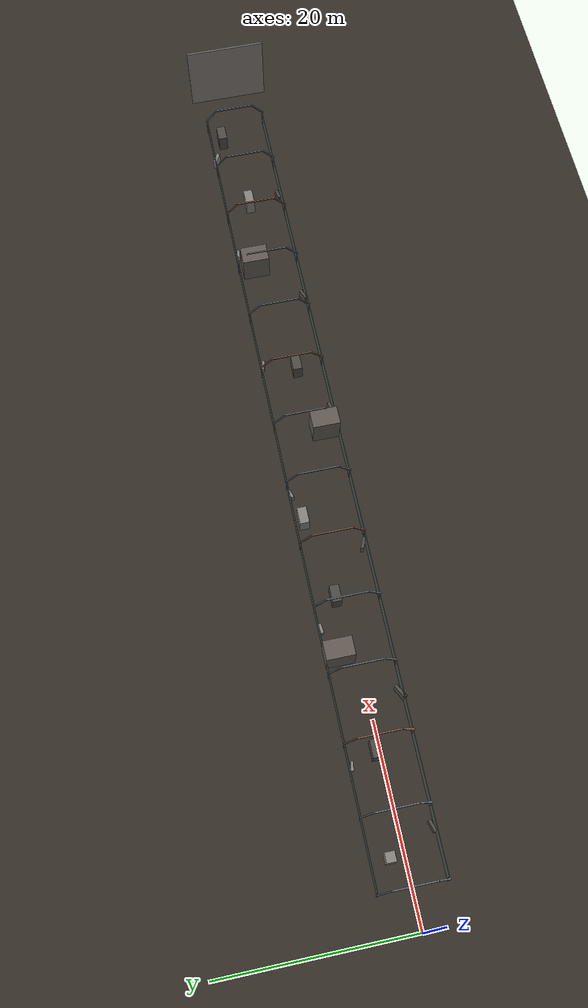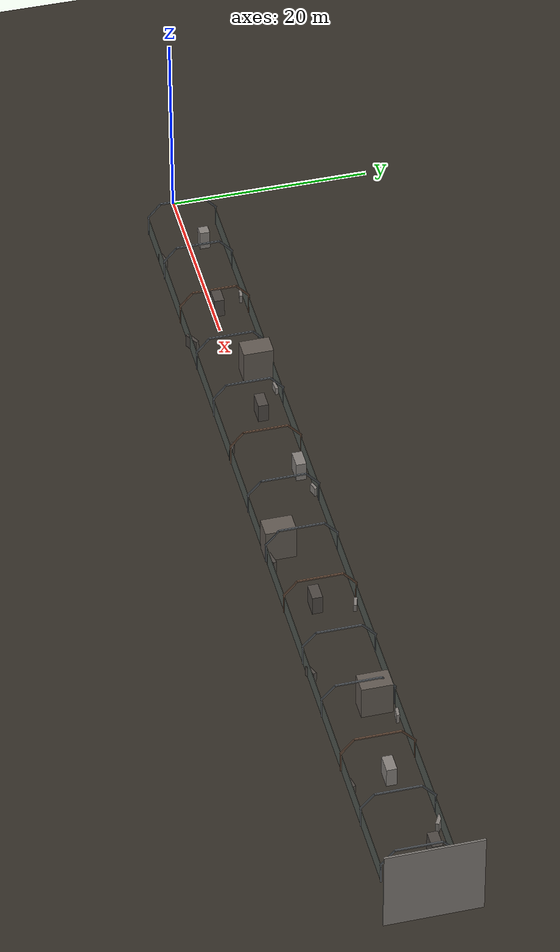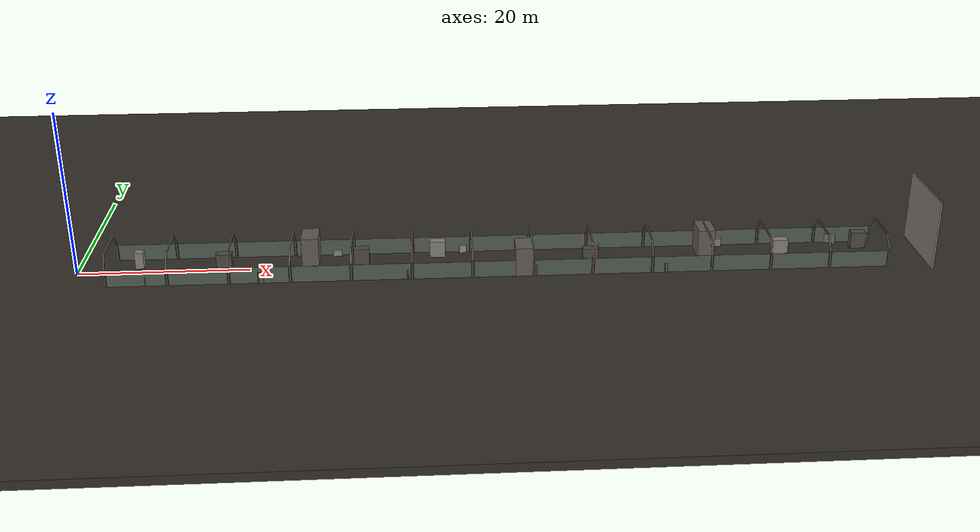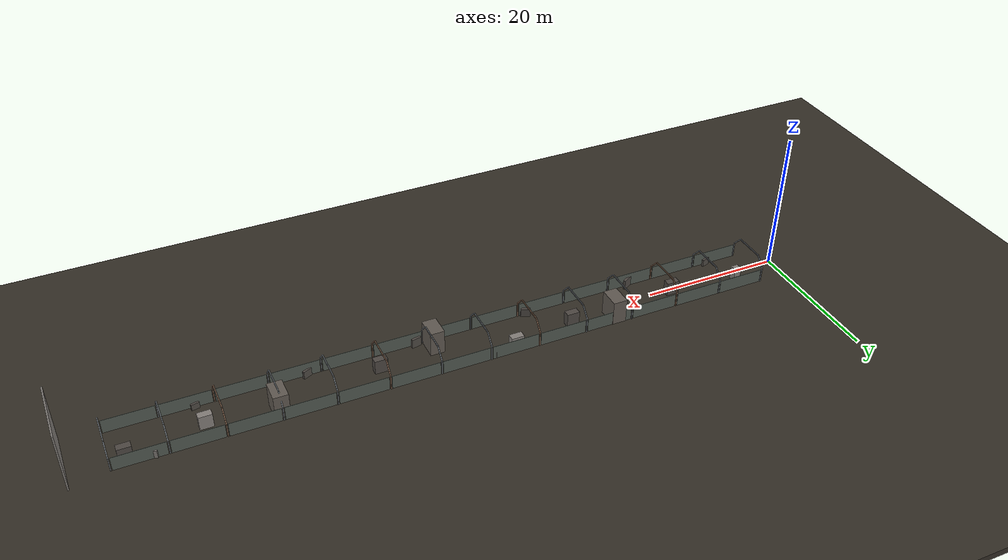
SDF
<sdf version="1.7">
 <world name="tunnel_100m_demonstration">
  <gravity>0 0 -9.8</gravity>
  <magnetic_field>6e-06 2.3e-05 -4.2e-05</magnetic_field>
  <atmosphere type="adiabatic"/>
  <physics type="ode">
   <max_step_size>0.001</max_step_size>
   <real_time_factor>1</real_time_factor>
   <real_time_update_rate>1000</real_time_update_rate>
  </physics>
  <scene>
   <ambient>0.17 0.15 0.13 1</ambient>
   <background>0.04 0.04 0.05 1</background>
   <shadows>1</shadows>
   <grid>false</grid>
   <origin_visual>false</origin_visual>
  </scene>
  <light name="dim_fill" type="directional">
   <cast_shadows>0</cast_shadows>
   <pose>50 0 8 0 -0 0</pose>
   <diffuse>0.22 0.20 0.18 1</diffuse>
   <specular>0.03 0.03 0.03 1</specular>
   <attenuation>
    <range>1000</range>
    <constant>0.9</constant>
    <linear>0.01</linear>
    <quadratic>0.001</quadratic>
   </attenuation>
   <direction>0.0 0.05 -1.0</direction>
  </light>
  <light name="light_00" type="point">
   <pose>7 0.0 5.5 0 0 0</pose>
   <diffuse>0.70 0.58 0.38 1</diffuse>
   <specular>0.12 0.10 0.06 1</specular>
   <attenuation>
    <range>20</range>
    <constant>0.35</constant>
    <linear>0.06</linear>
    <quadratic>0.015</quadratic>
   </attenuation>
  </light>
  <light name="light_01" type="point">
   <pose>21 0.0 5.5 0 0 0</pose>
   <diffuse>0.70 0.58 0.38 1</diffuse>
   <specular>0.12 0.10 0.06 1</specular>
   <attenuation>
    <range>20</range>
    <constant>0.35</constant>
    <linear>0.06</linear>
    <quadratic>0.015</quadratic>
   </attenuation>
  </light>
  <light name="light_02" type="point">
   <pose>35 0.0 5.5 0 0 0</pose>
   <diffuse>0.70 0.58 0.38 1</diffuse>
   <specular>0.12 0.10 0.06 1</specular>
   <attenuation>
    <range>20</range>
    <constant>0.35</constant>
    <linear>0.06</linear>
    <quadratic>0.015</quadratic>
   </attenuation>
  </light>
  <light name="light_03" type="point">
   <pose>49 0.0 5.5 0 0 0</pose>
   <diffuse>0.70 0.58 0.38 1</diffuse>
   <specular>0.12 0.10 0.06 1</specular>
   <attenuation>
    <range>20</range>
    <constant>0.35</constant>
    <linear>0.06</linear>
    <quadratic>0.015</quadratic>
   </attenuation>
  </light>
  <light name="light_04" type="point">
   <pose>63 0.0 5.5 0 0 0</pose>
   <diffuse>0.70 0.58 0.38 1</diffuse>
   <specular>0.12 0.10 0.06 1</specular>
   <attenuation>
    <range>20</range>
    <constant>0.35</constant>
    <linear>0.06</linear>
    <quadratic>0.015</quadratic>
   </attenuation>
  </light>
  <light name="light_05" type="point">
   <pose>77 0.0 5.5 0 0 0</pose>
   <diffuse>0.70 0.58 0.38 1</diffuse>
   <specular>0.12 0.10 0.06 1</specular>
   <attenuation>
    <range>20</range>
    <constant>0.35</constant>
    <linear>0.06</linear>
    <quadratic>0.015</quadratic>
   </attenuation>
  </light>
  <light name="light_06" type="point">
   <pose>91 0.0 5.5 0 0 0</pose>
   <diffuse>0.70 0.58 0.38 1</diffuse>
   <specular>0.12 0.10 0.06 1</specular>
   <attenuation>
    <range>20</range>
    <constant>0.35</constant>
    <linear>0.06</linear>
    <quadratic>0.015</quadratic>
   </attenuation>
  </light>
  <model name="ground_plane">
   <static>1</static>
   <link name="ground_link">
    <collision name="ground_collision">
     <pose>50 0 -0.5 0 0 0</pose>
     <geometry><box><size>400 400 1.0</size></box></geometry>
     <max_contacts>100</max_contacts>
     <surface>
      <contact><ode><soft_cfm>0</soft_cfm><soft_erp>0.8</soft_erp></ode></contact>
      <bounce><restitution_coefficient>0</restitution_coefficient></bounce>
      <friction><ode><mu>50</mu><mu2>50</mu2></ode></friction>
     </surface>
    </collision>
    <visual name="ground_visual">
     <pose>50 0 -0.5 0 0 0</pose>
     <geometry><box><size>400 400 1.0</size></box></geometry>
     <material>
      <ambient>0.18 0.16 0.14 1</ambient>
      <diffuse>0.20 0.18 0.15 1</diffuse>
      <specular>0.02 0.02 0.02 1</specular>
     </material>
    </visual>
   </link>
  </model>
  <model name="tunnel_end_wall">
   <pose>100 0 0 0 0 0</pose>
   <link name="Wall_0">
    <collision name="Wall_0_Collision">
     <geometry><box><size>9.15 0.20 8.5</size></box></geometry>
     <pose>0 0 4.25 0 0 0</pose>
     <max_contacts>50</max_contacts>
     <surface>
      <contact><ode><soft_cfm>0</soft_cfm><soft_erp>0.2</soft_erp></ode></contact>
      <bounce><restitution_coefficient>0</restitution_coefficient></bounce>
      <friction><ode><mu>5</mu><mu2>5</mu2></ode></friction>
     </surface>
    </collision>
    <visual name="Wall_0_Visual">
     <pose>0 0 4.25 0 0 0</pose>
     <geometry><box><size>9.15 0.20 8.5</size></box></geometry>
     <material>
      <ambient>0.52 0.50 0.48 1</ambient>
      <diffuse>0.50 0.48 0.46 1</diffuse>
      <specular>0.10 0.10 0.10 1</specular>
     </material>
    </visual>
    <pose>0 0 0 0 0 1.5708</pose>
   </link>
   <static>1</static>
  </model>
  <model name="arch_rib_00">
   <static>1</static>
   <pose>4 0 0 0 0 0</pose>
   <link name="link">
    <visual name="ll_v">
     <pose>0 -3.44 1.00 0 0 0</pose>
     <geometry><box><size>0.14 0.14 2.00</size></box></geometry>
     <material>
      <ambient>0.40 0.42 0.44 1</ambient>
      <diffuse>0.40 0.42 0.44 1</diffuse>
      <specular>0.6 0.6 0.65 1</specular>
     </material>
    </visual>
    <visual name="rl_v">
     <pose>0  3.44 1.00 0 0 0</pose>
     <geometry><box><size>0.14 0.14 2.00</size></box></geometry>
     <material>
      <ambient>0.40 0.42 0.44 1</ambient>
      <diffuse>0.40 0.42 0.44 1</diffuse>
      <specular>0.6 0.6 0.65 1</specular>
     </material>
    </visual>
    <visual name="ls_v">
     <pose>0 -2.86 2.86 -0.714 0 0</pose>
     <geometry><box><size>0.14 0.14 1.985</size></box></geometry>
     <material>
      <ambient>0.40 0.42 0.44 1</ambient>
      <diffuse>0.40 0.42 0.44 1</diffuse>
      <specular>0.6 0.6 0.65 1</specular>
     </material>
    </visual>
    <visual name="rs_v">
     <pose>0  2.86 2.86  0.714 0 0</pose>
     <geometry><box><size>0.14 0.14 1.985</size></box></geometry>
     <material>
      <ambient>0.40 0.42 0.44 1</ambient>
      <diffuse>0.40 0.42 0.44 1</diffuse>
      <specular>0.6 0.6 0.65 1</specular>
     </material>
    </visual>
    <visual name="cr_v">
     <pose>0  0.00 3.65 0 0 0</pose>
     <geometry><box><size>0.14 4.40 0.14</size></box></geometry>
     <material>
      <ambient>0.40 0.42 0.44 1</ambient>
      <diffuse>0.40 0.42 0.44 1</diffuse>
      <specular>0.6 0.6 0.65 1</specular>
     </material>
    </visual>
   </link>
  </model>
  <model name="arch_rib_01">
   <static>1</static>
   <pose>11 0 0 0 0 0</pose>
   <link name="link">
    <visual name="ll_v">
     <pose>0 -3.44 1.00 0 0 0</pose>
     <geometry><box><size>0.14 0.14 2.00</size></box></geometry>
     <material>
      <ambient>0.40 0.42 0.44 1</ambient>
      <diffuse>0.40 0.42 0.44 1</diffuse>
      <specular>0.6 0.6 0.65 1</specular>
     </material>
    </visual>
    <visual name="rl_v">
     <pose>0  3.44 1.00 0 0 0</pose>
     <geometry><box><size>0.14 0.14 2.00</size></box></geometry>
     <material>
      <ambient>0.40 0.42 0.44 1</ambient>
      <diffuse>0.40 0.42 0.44 1</diffuse>
      <specular>0.6 0.6 0.65 1</specular>
     </material>
    </visual>
    <visual name="ls_v">
     <pose>0 -2.86 2.86 -0.714 0 0</pose>
     <geometry><box><size>0.14 0.14 1.985</size></box></geometry>
     <material>
      <ambient>0.40 0.42 0.44 1</ambient>
      <diffuse>0.40 0.42 0.44 1</diffuse>
      <specular>0.6 0.6 0.65 1</specular>
     </material>
    </visual>
    <visual name="rs_v">
     <pose>0  2.86 2.86  0.714 0 0</pose>
     <geometry><box><size>0.14 0.14 1.985</size></box></geometry>
     <material>
      <ambient>0.40 0.42 0.44 1</ambient>
      <diffuse>0.40 0.42 0.44 1</diffuse>
      <specular>0.6 0.6 0.65 1</specular>
     </material>
    </visual>
    <visual name="cr_v">
     <pose>0  0.00 3.65 0 0 0</pose>
     <geometry><box><size>0.14 4.40 0.14</size></box></geometry>
     <material>
      <ambient>0.40 0.42 0.44 1</ambient>
      <diffuse>0.40 0.42 0.44 1</diffuse>
      <specular>0.6 0.6 0.65 1</specular>
     </material>
    </visual>
   </link>
  </model>
  <model name="arch_rib_02">
   <static>1</static>
   <pose>18 0 0 0 0 0</pose>
   <link name="link">
    <visual name="ll_v">
     <pose>0 -3.44 1.00 0 0 0</pose>
     <geometry><box><size>0.14 0.14 2.00</size></box></geometry>
     <material>
      <ambient>0.48 0.36 0.28 1</ambient>
      <diffuse>0.48 0.36 0.28 1</diffuse>
      <specular>0.6 0.6 0.65 1</specular>
     </material>
    </visual>
    <visual name="rl_v">
     <pose>0  3.44 1.00 0 0 0</pose>
     <geometry><box><size>0.14 0.14 2.00</size></box></geometry>
     <material>
      <ambient>0.48 0.36 0.28 1</ambient>
      <diffuse>0.48 0.36 0.28 1</diffuse>
      <specular>0.6 0.6 0.65 1</specular>
     </material>
    </visual>
    <visual name="ls_v">
     <pose>0 -2.86 2.86 -0.714 0 0</pose>
     <geometry><box><size>0.14 0.14 1.985</size></box></geometry>
     <material>
      <ambient>0.48 0.36 0.28 1</ambient>
      <diffuse>0.48 0.36 0.28 1</diffuse>
      <specular>0.6 0.6 0.65 1</specular>
     </material>
    </visual>
    <visual name="rs_v">
     <pose>0  2.86 2.86  0.714 0 0</pose>
     <geometry><box><size>0.14 0.14 1.985</size></box></geometry>
     <material>
      <ambient>0.48 0.36 0.28 1</ambient>
      <diffuse>0.48 0.36 0.28 1</diffuse>
      <specular>0.6 0.6 0.65 1</specular>
     </material>
    </visual>
    <visual name="cr_v">
     <pose>0  0.00 3.65 0 0 0</pose>
     <geometry><box><size>0.14 4.40 0.14</size></box></geometry>
     <material>
      <ambient>0.48 0.36 0.28 1</ambient>
      <diffuse>0.48 0.36 0.28 1</diffuse>
      <specular>0.6 0.6 0.65 1</specular>
     </material>
    </visual>
   </link>
  </model>
  <model name="arch_rib_03">
   <static>1</static>
   <pose>25 0 0 0 0 0</pose>
   <link name="link">
    <visual name="ll_v">
     <pose>0 -3.44 1.00 0 0 0</pose>
     <geometry><box><size>0.14 0.14 2.00</size></box></geometry>
     <material>
      <ambient>0.40 0.42 0.44 1</ambient>
      <diffuse>0.40 0.42 0.44 1</diffuse>
      <specular>0.6 0.6 0.65 1</specular>
     </material>
    </visual>
    <visual name="rl_v">
     <pose>0  3.44 1.00 0 0 0</pose>
     <geometry><box><size>0.14 0.14 2.00</size></box></geometry>
     <material>
      <ambient>0.40 0.42 0.44 1</ambient>
      <diffuse>0.40 0.42 0.44 1</diffuse>
      <specular>0.6 0.6 0.65 1</specular>
     </material>
    </visual>
    <visual name="ls_v">
     <pose>0 -2.86 2.86 -0.714 0 0</pose>
     <geometry><box><size>0.14 0.14 1.985</size></box></geometry>
     <material>
      <ambient>0.40 0.42 0.44 1</ambient>
      <diffuse>0.40 0.42 0.44 1</diffuse>
      <specular>0.6 0.6 0.65 1</specular>
     </material>
    </visual>
    <visual name="rs_v">
     <pose>0  2.86 2.86  0.714 0 0</pose>
     <geometry><box><size>0.14 0.14 1.985</size></box></geometry>
     <material>
      <ambient>0.40 0.42 0.44 1</ambient>
      <diffuse>0.40 0.42 0.44 1</diffuse>
      <specular>0.6 0.6 0.65 1</specular>
     </material>
    </visual>
    <visual name="cr_v">
     <pose>0  0.00 3.65 0 0 0</pose>
     <geometry><box><size>0.14 4.40 0.14</size></box></geometry>
     <material>
      <ambient>0.40 0.42 0.44 1</ambient>
      <diffuse>0.40 0.42 0.44 1</diffuse>
      <specular>0.6 0.6 0.65 1</specular>
     </material>
    </visual>
   </link>
  </model>
  <model name="arch_rib_04">
   <static>1</static>
   <pose>32 0 0 0 0 0</pose>
   <link name="link">
    <visual name="ll_v">
     <pose>0 -3.44 1.00 0 0 0</pose>
     <geometry><box><size>0.14 0.14 2.00</size></box></geometry>
     <material>
      <ambient>0.40 0.42 0.44 1</ambient>
      <diffuse>0.40 0.42 0.44 1</diffuse>
      <specular>0.6 0.6 0.65 1</specular>
     </material>
    </visual>
    <visual name="rl_v">
     <pose>0  3.44 1.00 0 0 0</pose>
     <geometry><box><size>0.14 0.14 2.00</size></box></geometry>
     <material>
      <ambient>0.40 0.42 0.44 1</ambient>
      <diffuse>0.40 0.42 0.44 1</diffuse>
      <specular>0.6 0.6 0.65 1</specular>
     </material>
    </visual>
    <visual name="ls_v">
     <pose>0 -2.86 2.86 -0.714 0 0</pose>
     <geometry><box><size>0.14 0.14 1.985</size></box></geometry>
     <material>
      <ambient>0.40 0.42 0.44 1</ambient>
      <diffuse>0.40 0.42 0.44 1</diffuse>
      <specular>0.6 0.6 0.65 1</specular>
     </material>
    </visual>
    <visual name="rs_v">
     <pose>0  2.86 2.86  0.714 0 0</pose>
     <geometry><box><size>0.14 0.14 1.985</size></box></geometry>
     <material>
      <ambient>0.40 0.42 0.44 1</ambient>
      <diffuse>0.40 0.42 0.44 1</diffuse>
      <specular>0.6 0.6 0.65 1</specular>
     </material>
    </visual>
    <visual name="cr_v">
     <pose>0  0.00 3.65 0 0 0</pose>
     <geometry><box><size>0.14 4.40 0.14</size></box></geometry>
     <material>
      <ambient>0.40 0.42 0.44 1</ambient>
      <diffuse>0.40 0.42 0.44 1</diffuse>
      <specular>0.6 0.6 0.65 1</specular>
     </material>
    </visual>
   </link>
  </model>
  <model name="arch_rib_05">
   <static>1</static>
   <pose>39 0 0 0 0 0</pose>
   <link name="link">
    <visual name="ll_v">
     <pose>0 -3.44 1.00 0 0 0</pose>
     <geometry><box><size>0.14 0.14 2.00</size></box></geometry>
     <material>
      <ambient>0.48 0.36 0.28 1</ambient>
      <diffuse>0.48 0.36 0.28 1</diffuse>
      <specular>0.6 0.6 0.65 1</specular>
     </material>
    </visual>
    <visual name="rl_v">
     <pose>0  3.44 1.00 0 0 0</pose>
     <geometry><box><size>0.14 0.14 2.00</size></box></geometry>
     <material>
      <ambient>0.48 0.36 0.28 1</ambient>
      <diffuse>0.48 0.36 0.28 1</diffuse>
      <specular>0.6 0.6 0.65 1</specular>
     </material>
    </visual>
    <visual name="ls_v">
     <pose>0 -2.86 2.86 -0.714 0 0</pose>
     <geometry><box><size>0.14 0.14 1.985</size></box></geometry>
     <material>
      <ambient>0.48 0.36 0.28 1</ambient>
      <diffuse>0.48 0.36 0.28 1</diffuse>
      <specular>0.6 0.6 0.65 1</specular>
     </material>
    </visual>
    <visual name="rs_v">
     <pose>0  2.86 2.86  0.714 0 0</pose>
     <geometry><box><size>0.14 0.14 1.985</size></box></geometry>
     <material>
      <ambient>0.48 0.36 0.28 1</ambient>
      <diffuse>0.48 0.36 0.28 1</diffuse>
      <specular>0.6 0.6 0.65 1</specular>
     </material>
    </visual>
    <visual name="cr_v">
     <pose>0  0.00 3.65 0 0 0</pose>
     <geometry><box><size>0.14 4.40 0.14</size></box></geometry>
     <material>
      <ambient>0.48 0.36 0.28 1</ambient>
      <diffuse>0.48 0.36 0.28 1</diffuse>
      <specular>0.6 0.6 0.65 1</specular>
     </material>
    </visual>
   </link>
  </model>
  <model name="arch_rib_06">
   <static>1</static>
   <pose>46 0 0 0 0 0</pose>
   <link name="link">
    <visual name="ll_v">
     <pose>0 -3.44 1.00 0 0 0</pose>
     <geometry><box><size>0.14 0.14 2.00</size></box></geometry>
     <material>
      <ambient>0.40 0.42 0.44 1</ambient>
      <diffuse>0.40 0.42 0.44 1</diffuse>
      <specular>0.6 0.6 0.65 1</specular>
     </material>
    </visual>
    <visual name="rl_v">
     <pose>0  3.44 1.00 0 0 0</pose>
     <geometry><box><size>0.14 0.14 2.00</size></box></geometry>
     <material>
      <ambient>0.40 0.42 0.44 1</ambient>
      <diffuse>0.40 0.42 0.44 1</diffuse>
      <specular>0.6 0.6 0.65 1</specular>
     </material>
    </visual>
    <visual name="ls_v">
     <pose>0 -2.86 2.86 -0.714 0 0</pose>
     <geometry><box><size>0.14 0.14 1.985</size></box></geometry>
     <material>
      <ambient>0.40 0.42 0.44 1</ambient>
      <diffuse>0.40 0.42 0.44 1</diffuse>
      <specular>0.6 0.6 0.65 1</specular>
     </material>
    </visual>
    <visual name="rs_v">
     <pose>0  2.86 2.86  0.714 0 0</pose>
     <geometry><box><size>0.14 0.14 1.985</size></box></geometry>
     <material>
      <ambient>0.40 0.42 0.44 1</ambient>
      <diffuse>0.40 0.42 0.44 1</diffuse>
      <specular>0.6 0.6 0.65 1</specular>
     </material>
    </visual>
    <visual name="cr_v">
     <pose>0  0.00 3.65 0 0 0</pose>
     <geometry><box><size>0.14 4.40 0.14</size></box></geometry>
     <material>
      <ambient>0.40 0.42 0.44 1</ambient>
      <diffuse>0.40 0.42 0.44 1</diffuse>
      <specular>0.6 0.6 0.65 1</specular>
     </material>
    </visual>
   </link>
  </model>
  <model name="arch_rib_07">
   <static>1</static>
   <pose>53 0 0 0 0 0</pose>
   <link name="link">
    <visual name="ll_v">
     <pose>0 -3.44 1.00 0 0 0</pose>
     <geometry><box><size>0.14 0.14 2.00</size></box></geometry>
     <material>
      <ambient>0.40 0.42 0.44 1</ambient>
      <diffuse>0.40 0.42 0.44 1</diffuse>
      <specular>0.6 0.6 0.65 1</specular>
     </material>
    </visual>
    <visual name="rl_v">
     <pose>0  3.44 1.00 0 0 0</pose>
     <geometry><box><size>0.14 0.14 2.00</size></box></geometry>
     <material>
      <ambient>0.40 0.42 0.44 1</ambient>
      <diffuse>0.40 0.42 0.44 1</diffuse>
      <specular>0.6 0.6 0.65 1</specular>
     </material>
    </visual>
    <visual name="ls_v">
     <pose>0 -2.86 2.86 -0.714 0 0</pose>
     <geometry><box><size>0.14 0.14 1.985</size></box></geometry>
     <material>
      <ambient>0.40 0.42 0.44 1</ambient>
      <diffuse>0.40 0.42 0.44 1</diffuse>
      <specular>0.6 0.6 0.65 1</specular>
     </material>
    </visual>
    <visual name="rs_v">
     <pose>0  2.86 2.86  0.714 0 0</pose>
     <geometry><box><size>0.14 0.14 1.985</size></box></geometry>
     <material>
      <ambient>0.40 0.42 0.44 1</ambient>
      <diffuse>0.40 0.42 0.44 1</diffuse>
      <specular>0.6 0.6 0.65 1</specular>
     </material>
    </visual>
    <visual name="cr_v">
     <pose>0  0.00 3.65 0 0 0</pose>
     <geometry><box><size>0.14 4.40 0.14</size></box></geometry>
     <material>
      <ambient>0.40 0.42 0.44 1</ambient>
      <diffuse>0.40 0.42 0.44 1</diffuse>
      <specular>0.6 0.6 0.65 1</specular>
     </material>
    </visual>
   </link>
  </model>
  <model name="arch_rib_08">
   <static>1</static>
   <pose>60 0 0 0 0 0</pose>
   <link name="link">
    <visual name="ll_v">
     <pose>0 -3.44 1.00 0 0 0</pose>
     <geometry><box><size>0.14 0.14 2.00</size></box></geometry>
     <material>
      <ambient>0.48 0.36 0.28 1</ambient>
      <diffuse>0.48 0.36 0.28 1</diffuse>
      <specular>0.6 0.6 0.65 1</specular>
     </material>
    </visual>
    <visual name="rl_v">
     <pose>0  3.44 1.00 0 0 0</pose>
     <geometry><box><size>0.14 0.14 2.00</size></box></geometry>
     <material>
      <ambient>0.48 0.36 0.28 1</ambient>
      <diffuse>0.48 0.36 0.28 1</diffuse>
      <specular>0.6 0.6 0.65 1</specular>
     </material>
    </visual>
    <visual name="ls_v">
     <pose>0 -2.86 2.86 -0.714 0 0</pose>
     <geometry><box><size>0.14 0.14 1.985</size></box></geometry>
     <material>
      <ambient>0.48 0.36 0.28 1</ambient>
      <diffuse>0.48 0.36 0.28 1</diffuse>
      <specular>0.6 0.6 0.65 1</specular>
     </material>
    </visual>
    <visual name="rs_v">
     <pose>0  2.86 2.86  0.714 0 0</pose>
     <geometry><box><size>0.14 0.14 1.985</size></box></geometry>
     <material>
      <ambient>0.48 0.36 0.28 1</ambient>
      <diffuse>0.48 0.36 0.28 1</diffuse>
      <specular>0.6 0.6 0.65 1</specular>
     </material>
    </visual>
    <visual name="cr_v">
     <pose>0  0.00 3.65 0 0 0</pose>
     <geometry><box><size>0.14 4.40 0.14</size></box></geometry>
     <material>
      <ambient>0.48 0.36 0.28 1</ambient>
      <diffuse>0.48 0.36 0.28 1</diffuse>
      <specular>0.6 0.6 0.65 1</specular>
     </material>
    </visual>
   </link>
  </model>
  <model name="arch_rib_09">
   <static>1</static>
   <pose>67 0 0 0 0 0</pose>
   <link name="link">
    <visual name="ll_v">
     <pose>0 -3.44 1.00 0 0 0</pose>
     <geometry><box><size>0.14 0.14 2.00</size></box></geometry>
     <material>
      <ambient>0.40 0.42 0.44 1</ambient>
      <diffuse>0.40 0.42 0.44 1</diffuse>
      <specular>0.6 0.6 0.65 1</specular>
     </material>
    </visual>
    <visual name="rl_v">
     <pose>0  3.44 1.00 0 0 0</pose>
     <geometry><box><size>0.14 0.14 2.00</size></box></geometry>
     <material>
      <ambient>0.40 0.42 0.44 1</ambient>
      <diffuse>0.40 0.42 0.44 1</diffuse>
      <specular>0.6 0.6 0.65 1</specular>
     </material>
    </visual>
    <visual name="ls_v">
     <pose>0 -2.86 2.86 -0.714 0 0</pose>
     <geometry><box><size>0.14 0.14 1.985</size></box></geometry>
     <material>
      <ambient>0.40 0.42 0.44 1</ambient>
      <diffuse>0.40 0.42 0.44 1</diffuse>
      <specular>0.6 0.6 0.65 1</specular>
     </material>
    </visual>
    <visual name="rs_v">
     <pose>0  2.86 2.86  0.714 0 0</pose>
     <geometry><box><size>0.14 0.14 1.985</size></box></geometry>
     <material>
      <ambient>0.40 0.42 0.44 1</ambient>
      <diffuse>0.40 0.42 0.44 1</diffuse>
      <specular>0.6 0.6 0.65 1</specular>
     </material>
    </visual>
    <visual name="cr_v">
     <pose>0  0.00 3.65 0 0 0</pose>
     <geometry><box><size>0.14 4.40 0.14</size></box></geometry>
     <material>
      <ambient>0.40 0.42 0.44 1</ambient>
      <diffuse>0.40 0.42 0.44 1</diffuse>
      <specular>0.6 0.6 0.65 1</specular>
     </material>
    </visual>
   </link>
  </model>
  <model name="arch_rib_10">
   <static>1</static>
   <pose>74 0 0 0 0 0</pose>
   <link name="link">
    <visual name="ll_v">
     <pose>0 -3.44 1.00 0 0 0</pose>
     <geometry><box><size>0.14 0.14 2.00</size></box></geometry>
     <material>
      <ambient>0.40 0.42 0.44 1</ambient>
      <diffuse>0.40 0.42 0.44 1</diffuse>
      <specular>0.6 0.6 0.65 1</specular>
     </material>
    </visual>
    <visual name="rl_v">
     <pose>0  3.44 1.00 0 0 0</pose>
     <geometry><box><size>0.14 0.14 2.00</size></box></geometry>
     <material>
      <ambient>0.40 0.42 0.44 1</ambient>
      <diffuse>0.40 0.42 0.44 1</diffuse>
      <specular>0.6 0.6 0.65 1</specular>
     </material>
    </visual>
    <visual name="ls_v">
     <pose>0 -2.86 2.86 -0.714 0 0</pose>
     <geometry><box><size>0.14 0.14 1.985</size></box></geometry>
     <material>
      <ambient>0.40 0.42 0.44 1</ambient>
      <diffuse>0.40 0.42 0.44 1</diffuse>
      <specular>0.6 0.6 0.65 1</specular>
     </material>
    </visual>
    <visual name="rs_v">
     <pose>0  2.86 2.86  0.714 0 0</pose>
     <geometry><box><size>0.14 0.14 1.985</size></box></geometry>
     <material>
      <ambient>0.40 0.42 0.44 1</ambient>
      <diffuse>0.40 0.42 0.44 1</diffuse>
      <specular>0.6 0.6 0.65 1</specular>
     </material>
    </visual>
    <visual name="cr_v">
     <pose>0  0.00 3.65 0 0 0</pose>
     <geometry><box><size>0.14 4.40 0.14</size></box></geometry>
     <material>
      <ambient>0.40 0.42 0.44 1</ambient>
      <diffuse>0.40 0.42 0.44 1</diffuse>
      <specular>0.6 0.6 0.65 1</specular>
     </material>
    </visual>
   </link>
  </model>
  <model name="arch_rib_11">
   <static>1</static>
   <pose>81 0 0 0 0 0</pose>
   <link name="link">
    <visual name="ll_v">
     <pose>0 -3.44 1.00 0 0 0</pose>
     <geometry><box><size>0.14 0.14 2.00</size></box></geometry>
     <material>
      <ambient>0.48 0.36 0.28 1</ambient>
      <diffuse>0.48 0.36 0.28 1</diffuse>
      <specular>0.6 0.6 0.65 1</specular>
     </material>
    </visual>
    <visual name="rl_v">
     <pose>0  3.44 1.00 0 0 0</pose>
     <geometry><box><size>0.14 0.14 2.00</size></box></geometry>
     <material>
      <ambient>0.48 0.36 0.28 1</ambient>
      <diffuse>0.48 0.36 0.28 1</diffuse>
      <specular>0.6 0.6 0.65 1</specular>
     </material>
    </visual>
    <visual name="ls_v">
     <pose>0 -2.86 2.86 -0.714 0 0</pose>
     <geometry><box><size>0.14 0.14 1.985</size></box></geometry>
     <material>
      <ambient>0.48 0.36 0.28 1</ambient>
      <diffuse>0.48 0.36 0.28 1</diffuse>
      <specular>0.6 0.6 0.65 1</specular>
     </material>
    </visual>
    <visual name="rs_v">
     <pose>0  2.86 2.86  0.714 0 0</pose>
     <geometry><box><size>0.14 0.14 1.985</size></box></geometry>
     <material>
      <ambient>0.48 0.36 0.28 1</ambient>
      <diffuse>0.48 0.36 0.28 1</diffuse>
      <specular>0.6 0.6 0.65 1</specular>
     </material>
    </visual>
    <visual name="cr_v">
     <pose>0  0.00 3.65 0 0 0</pose>
     <geometry><box><size>0.14 4.40 0.14</size></box></geometry>
     <material>
      <ambient>0.48 0.36 0.28 1</ambient>
      <diffuse>0.48 0.36 0.28 1</diffuse>
      <specular>0.6 0.6 0.65 1</specular>
     </material>
    </visual>
   </link>
  </model>
  <model name="arch_rib_12">
   <static>1</static>
   <pose>88 0 0 0 0 0</pose>
   <link name="link">
    <visual name="ll_v">
     <pose>0 -3.44 1.00 0 0 0</pose>
     <geometry><box><size>0.14 0.14 2.00</size></box></geometry>
     <material>
      <ambient>0.40 0.42 0.44 1</ambient>
      <diffuse>0.40 0.42 0.44 1</diffuse>
      <specular>0.6 0.6 0.65 1</specular>
     </material>
    </visual>
    <visual name="rl_v">
     <pose>0  3.44 1.00 0 0 0</pose>
     <geometry><box><size>0.14 0.14 2.00</size></box></geometry>
     <material>
      <ambient>0.40 0.42 0.44 1</ambient>
      <diffuse>0.40 0.42 0.44 1</diffuse>
      <specular>0.6 0.6 0.65 1</specular>
     </material>
    </visual>
    <visual name="ls_v">
     <pose>0 -2.86 2.86 -0.714 0 0</pose>
     <geometry><box><size>0.14 0.14 1.985</size></box></geometry>
     <material>
      <ambient>0.40 0.42 0.44 1</ambient>
      <diffuse>0.40 0.42 0.44 1</diffuse>
      <specular>0.6 0.6 0.65 1</specular>
     </material>
    </visual>
    <visual name="rs_v">
     <pose>0  2.86 2.86  0.714 0 0</pose>
     <geometry><box><size>0.14 0.14 1.985</size></box></geometry>
     <material>
      <ambient>0.40 0.42 0.44 1</ambient>
      <diffuse>0.40 0.42 0.44 1</diffuse>
      <specular>0.6 0.6 0.65 1</specular>
     </material>
    </visual>
    <visual name="cr_v">
     <pose>0  0.00 3.65 0 0 0</pose>
     <geometry><box><size>0.14 4.40 0.14</size></box></geometry>
     <material>
      <ambient>0.40 0.42 0.44 1</ambient>
      <diffuse>0.40 0.42 0.44 1</diffuse>
      <specular>0.6 0.6 0.65 1</specular>
     </material>
    </visual>
   </link>
  </model>
  <model name="arch_rib_13">
   <static>1</static>
   <pose>95 0 0 0 0 0</pose>
   <link name="link">
    <visual name="ll_v">
     <pose>0 -3.44 1.00 0 0 0</pose>
     <geometry><box><size>0.14 0.14 2.00</size></box></geometry>
     <material>
      <ambient>0.40 0.42 0.44 1</ambient>
      <diffuse>0.40 0.42 0.44 1</diffuse>
      <specular>0.6 0.6 0.65 1</specular>
     </material>
    </visual>
    <visual name="rl_v">
     <pose>0  3.44 1.00 0 0 0</pose>
     <geometry><box><size>0.14 0.14 2.00</size></box></geometry>
     <material>
      <ambient>0.40 0.42 0.44 1</ambient>
      <diffuse>0.40 0.42 0.44 1</diffuse>
      <specular>0.6 0.6 0.65 1</specular>
     </material>
    </visual>
    <visual name="ls_v">
     <pose>0 -2.86 2.86 -0.714 0 0</pose>
     <geometry><box><size>0.14 0.14 1.985</size></box></geometry>
     <material>
      <ambient>0.40 0.42 0.44 1</ambient>
      <diffuse>0.40 0.42 0.44 1</diffuse>
      <specular>0.6 0.6 0.65 1</specular>
     </material>
    </visual>
    <visual name="rs_v">
     <pose>0  2.86 2.86  0.714 0 0</pose>
     <geometry><box><size>0.14 0.14 1.985</size></box></geometry>
     <material>
      <ambient>0.40 0.42 0.44 1</ambient>
      <diffuse>0.40 0.42 0.44 1</diffuse>
      <specular>0.6 0.6 0.65 1</specular>
     </material>
    </visual>
    <visual name="cr_v">
     <pose>0  0.00 3.65 0 0 0</pose>
     <geometry><box><size>0.14 4.40 0.14</size></box></geometry>
     <material>
      <ambient>0.40 0.42 0.44 1</ambient>
      <diffuse>0.40 0.42 0.44 1</diffuse>
      <specular>0.6 0.6 0.65 1</specular>
     </material>
    </visual>
   </link>
  </model>
  <model name="panel_L_00">
   <static>1</static>
   <pose>7.5 -3.42 0 0 0 0</pose>
   <link name="link">
    <visual name="v">
     <pose>0 0 1.0 0 0 0</pose>
     <geometry><box><size>6.65 0.04 2.00</size></box></geometry>
     <material>
      <ambient>0.32 0.35 0.32 1</ambient>
      <diffuse>0.32 0.35 0.32 1</diffuse>
      <specular>0.2 0.2 0.2 1</specular>
     </material>
    </visual>
   </link>
  </model>
  <model name="panel_R_00">
   <static>1</static>
   <pose>7.5 3.42 0 0 0 0</pose>
   <link name="link">
    <visual name="v">
     <pose>0 0 1.0 0 0 0</pose>
     <geometry><box><size>6.65 0.04 2.00</size></box></geometry>
     <material>
      <ambient>0.32 0.35 0.32 1</ambient>
      <diffuse>0.32 0.35 0.32 1</diffuse>
      <specular>0.2 0.2 0.2 1</specular>
     </material>
    </visual>
   </link>
  </model>
  <model name="panel_L_01">
   <static>1</static>
   <pose>14.5 -3.42 0 0 0 0</pose>
   <link name="link">
    <visual name="v">
     <pose>0 0 1.0 0 0 0</pose>
     <geometry><box><size>6.65 0.04 2.00</size></box></geometry>
     <material>
      <ambient>0.32 0.35 0.32 1</ambient>
      <diffuse>0.32 0.35 0.32 1</diffuse>
      <specular>0.2 0.2 0.2 1</specular>
     </material>
    </visual>
   </link>
  </model>
  <model name="panel_R_01">
   <static>1</static>
   <pose>14.5 3.42 0 0 0 0</pose>
   <link name="link">
    <visual name="v">
     <pose>0 0 1.0 0 0 0</pose>
     <geometry><box><size>6.65 0.04 2.00</size></box></geometry>
     <material>
      <ambient>0.32 0.35 0.32 1</ambient>
      <diffuse>0.32 0.35 0.32 1</diffuse>
      <specular>0.2 0.2 0.2 1</specular>
     </material>
    </visual>
   </link>
  </model>
  <model name="panel_L_02">
   <static>1</static>
   <pose>21.5 -3.42 0 0 0 0</pose>
   <link name="link">
    <visual name="v">
     <pose>0 0 1.0 0 0 0</pose>
     <geometry><box><size>6.65 0.04 2.00</size></box></geometry>
     <material>
      <ambient>0.32 0.35 0.32 1</ambient>
      <diffuse>0.32 0.35 0.32 1</diffuse>
      <specular>0.2 0.2 0.2 1</specular>
     </material>
    </visual>
   </link>
  </model>
  <model name="panel_R_02">
   <static>1</static>
   <pose>21.5 3.42 0 0 0 0</pose>
   <link name="link">
    <visual name="v">
     <pose>0 0 1.0 0 0 0</pose>
     <geometry><box><size>6.65 0.04 2.00</size></box></geometry>
     <material>
      <ambient>0.32 0.35 0.32 1</ambient>
      <diffuse>0.32 0.35 0.32 1</diffuse>
      <specular>0.2 0.2 0.2 1</specular>
     </material>
    </visual>
   </link>
  </model>
  <model name="panel_L_03">
   <static>1</static>
   <pose>28.5 -3.42 0 0 0 0</pose>
   <link name="link">
    <visual name="v">
     <pose>0 0 1.0 0 0 0</pose>
     <geometry><box><size>6.65 0.04 2.00</size></box></geometry>
     <material>
      <ambient>0.32 0.35 0.32 1</ambient>
      <diffuse>0.32 0.35 0.32 1</diffuse>
      <specular>0.2 0.2 0.2 1</specular>
     </material>
    </visual>
   </link>
  </model>
  <model name="panel_R_03">
   <static>1</static>
   <pose>28.5 3.42 0 0 0 0</pose>
   <link name="link">
    <visual name="v">
     <pose>0 0 1.0 0 0 0</pose>
     <geometry><box><size>6.65 0.04 2.00</size></box></geometry>
     <material>
      <ambient>0.32 0.35 0.32 1</ambient>
      <diffuse>0.32 0.35 0.32 1</diffuse>
      <specular>0.2 0.2 0.2 1</specular>
     </material>
    </visual>
   </link>
  </model>
  <model name="panel_L_04">
   <static>1</static>
   <pose>35.5 -3.42 0 0 0 0</pose>
   <link name="link">
    <visual name="v">
     <pose>0 0 1.0 0 0 0</pose>
     <geometry><box><size>6.65 0.04 2.00</size></box></geometry>
     <material>
      <ambient>0.32 0.35 0.32 1</ambient>
      <diffuse>0.32 0.35 0.32 1</diffuse>
      <specular>0.2 0.2 0.2 1</specular>
     </material>
    </visual>
   </link>
  </model>
  <model name="panel_R_04">
   <static>1</static>
   <pose>35.5 3.42 0 0 0 0</pose>
   <link name="link">
    <visual name="v">
     <pose>0 0 1.0 0 0 0</pose>
     <geometry><box><size>6.65 0.04 2.00</size></box></geometry>
     <material>
      <ambient>0.32 0.35 0.32 1</ambient>
      <diffuse>0.32 0.35 0.32 1</diffuse>
      <specular>0.2 0.2 0.2 1</specular>
     </material>
    </visual>
   </link>
  </model>
  <model name="panel_L_05">
   <static>1</static>
   <pose>42.5 -3.42 0 0 0 0</pose>
   <link name="link">
    <visual name="v">
     <pose>0 0 1.0 0 0 0</pose>
     <geometry><box><size>6.65 0.04 2.00</size></box></geometry>
     <material>
      <ambient>0.32 0.35 0.32 1</ambient>
      <diffuse>0.32 0.35 0.32 1</diffuse>
      <specular>0.2 0.2 0.2 1</specular>
     </material>
    </visual>
   </link>
  </model>
  <model name="panel_R_05">
   <static>1</static>
   <pose>42.5 3.42 0 0 0 0</pose>
   <link name="link">
    <visual name="v">
     <pose>0 0 1.0 0 0 0</pose>
     <geometry><box><size>6.65 0.04 2.00</size></box></geometry>
     <material>
      <ambient>0.32 0.35 0.32 1</ambient>
      <diffuse>0.32 0.35 0.32 1</diffuse>
      <specular>0.2 0.2 0.2 1</specular>
     </material>
    </visual>
   </link>
  </model>
  <model name="panel_L_06">
   <static>1</static>
   <pose>49.5 -3.42 0 0 0 0</pose>
   <link name="link">
    <visual name="v">
     <pose>0 0 1.0 0 0 0</pose>
     <geometry><box><size>6.65 0.04 2.00</size></box></geometry>
     <material>
      <ambient>0.32 0.35 0.32 1</ambient>
      <diffuse>0.32 0.35 0.32 1</diffuse>
      <specular>0.2 0.2 0.2 1</specular>
     </material>
    </visual>
   </link>
  </model>
  <model name="panel_R_06">
   <static>1</static>
   <pose>49.5 3.42 0 0 0 0</pose>
   <link name="link">
    <visual name="v">
     <pose>0 0 1.0 0 0 0</pose>
     <geometry><box><size>6.65 0.04 2.00</size></box></geometry>
     <material>
      <ambient>0.32 0.35 0.32 1</ambient>
      <diffuse>0.32 0.35 0.32 1</diffuse>
      <specular>0.2 0.2 0.2 1</specular>
     </material>
    </visual>
   </link>
  </model>
  <model name="panel_L_07">
   <static>1</static>
   <pose>56.5 -3.42 0 0 0 0</pose>
   <link name="link">
    <visual name="v">
     <pose>0 0 1.0 0 0 0</pose>
     <geometry><box><size>6.65 0.04 2.00</size></box></geometry>
     <material>
      <ambient>0.32 0.35 0.32 1</ambient>
      <diffuse>0.32 0.35 0.32 1</diffuse>
      <specular>0.2 0.2 0.2 1</specular>
     </material>
    </visual>
   </link>
  </model>
  <model name="panel_R_07">
   <static>1</static>
   <pose>56.5 3.42 0 0 0 0</pose>
   <link name="link">
    <visual name="v">
     <pose>0 0 1.0 0 0 0</pose>
     <geometry><box><size>6.65 0.04 2.00</size></box></geometry>
     <material>
      <ambient>0.32 0.35 0.32 1</ambient>
      <diffuse>0.32 0.35 0.32 1</diffuse>
      <specular>0.2 0.2 0.2 1</specular>
     </material>
    </visual>
   </link>
  </model>
  <model name="panel_L_08">
   <static>1</static>
   <pose>63.5 -3.42 0 0 0 0</pose>
   <link name="link">
    <visual name="v">
     <pose>0 0 1.0 0 0 0</pose>
     <geometry><box><size>6.65 0.04 2.00</size></box></geometry>
     <material>
      <ambient>0.32 0.35 0.32 1</ambient>
      <diffuse>0.32 0.35 0.32 1</diffuse>
      <specular>0.2 0.2 0.2 1</specular>
     </material>
    </visual>
   </link>
  </model>
  <model name="panel_R_08">
   <static>1</static>
   <pose>63.5 3.42 0 0 0 0</pose>
   <link name="link">
    <visual name="v">
     <pose>0 0 1.0 0 0 0</pose>
     <geometry><box><size>6.65 0.04 2.00</size></box></geometry>
     <material>
      <ambient>0.32 0.35 0.32 1</ambient>
      <diffuse>0.32 0.35 0.32 1</diffuse>
      <specular>0.2 0.2 0.2 1</specular>
     </material>
    </visual>
   </link>
  </model>
  <model name="panel_L_09">
   <static>1</static>
   <pose>70.5 -3.42 0 0 0 0</pose>
   <link name="link">
    <visual name="v">
     <pose>0 0 1.0 0 0 0</pose>
     <geometry><box><size>6.65 0.04 2.00</size></box></geometry>
     <material>
      <ambient>0.32 0.35 0.32 1</ambient>
      <diffuse>0.32 0.35 0.32 1</diffuse>
      <specular>0.2 0.2 0.2 1</specular>
     </material>
    </visual>
   </link>
  </model>
  <model name="panel_R_09">
   <static>1</static>
   <pose>70.5 3.42 0 0 0 0</pose>
   <link name="link">
    <visual name="v">
     <pose>0 0 1.0 0 0 0</pose>
     <geometry><box><size>6.65 0.04 2.00</size></box></geometry>
     <material>
      <ambient>0.32 0.35 0.32 1</ambient>
      <diffuse>0.32 0.35 0.32 1</diffuse>
      <specular>0.2 0.2 0.2 1</specular>
     </material>
    </visual>
   </link>
  </model>
  <model name="panel_L_10">
   <static>1</static>
   <pose>77.5 -3.42 0 0 0 0</pose>
   <link name="link">
    <visual name="v">
     <pose>0 0 1.0 0 0 0</pose>
     <geometry><box><size>6.65 0.04 2.00</size></box></geometry>
     <material>
      <ambient>0.32 0.35 0.32 1</ambient>
      <diffuse>0.32 0.35 0.32 1</diffuse>
      <specular>0.2 0.2 0.2 1</specular>
     </material>
    </visual>
   </link>
  </model>
  <model name="panel_R_10">
   <static>1</static>
   <pose>77.5 3.42 0 0 0 0</pose>
   <link name="link">
    <visual name="v">
     <pose>0 0 1.0 0 0 0</pose>
     <geometry><box><size>6.65 0.04 2.00</size></box></geometry>
     <material>
      <ambient>0.32 0.35 0.32 1</ambient>
      <diffuse>0.32 0.35 0.32 1</diffuse>
      <specular>0.2 0.2 0.2 1</specular>
     </material>
    </visual>
   </link>
  </model>
  <model name="panel_L_11">
   <static>1</static>
   <pose>84.5 -3.42 0 0 0 0</pose>
   <link name="link">
    <visual name="v">
     <pose>0 0 1.0 0 0 0</pose>
     <geometry><box><size>6.65 0.04 2.00</size></box></geometry>
     <material>
      <ambient>0.32 0.35 0.32 1</ambient>
      <diffuse>0.32 0.35 0.32 1</diffuse>
      <specular>0.2 0.2 0.2 1</specular>
     </material>
    </visual>
   </link>
  </model>
  <model name="panel_R_11">
   <static>1</static>
   <pose>84.5 3.42 0 0 0 0</pose>
   <link name="link">
    <visual name="v">
     <pose>0 0 1.0 0 0 0</pose>
     <geometry><box><size>6.65 0.04 2.00</size></box></geometry>
     <material>
      <ambient>0.32 0.35 0.32 1</ambient>
      <diffuse>0.32 0.35 0.32 1</diffuse>
      <specular>0.2 0.2 0.2 1</specular>
     </material>
    </visual>
   </link>
  </model>
  <model name="panel_L_12">
   <static>1</static>
   <pose>91.5 -3.42 0 0 0 0</pose>
   <link name="link">
    <visual name="v">
     <pose>0 0 1.0 0 0 0</pose>
     <geometry><box><size>6.65 0.04 2.00</size></box></geometry>
     <material>
      <ambient>0.32 0.35 0.32 1</ambient>
      <diffuse>0.32 0.35 0.32 1</diffuse>
      <specular>0.2 0.2 0.2 1</specular>
     </material>
    </visual>
   </link>
  </model>
  <model name="panel_R_12">
   <static>1</static>
   <pose>91.5 3.42 0 0 0 0</pose>
   <link name="link">
    <visual name="v">
     <pose>0 0 1.0 0 0 0</pose>
     <geometry><box><size>6.65 0.04 2.00</size></box></geometry>
     <material>
      <ambient>0.32 0.35 0.32 1</ambient>
      <diffuse>0.32 0.35 0.32 1</diffuse>
      <specular>0.2 0.2 0.2 1</specular>
     </material>
    </visual>
   </link>
  </model>
  <model name="rock_00">
   <static>1</static>
   <pose>9.0 -3.15 0 0 0 0.300</pose>
   <link name="link">
    <visual name="v">
     <pose>0 0 0.55 0 0 0</pose>
     <geometry><box><size>1.2 0.3 1.1</size></box></geometry>
     <material>
      <ambient>0.30 0.28 0.26 1</ambient>
      <diffuse>0.30 0.28 0.26 1</diffuse>
      <specular>0.15 0.14 0.12 1</specular>
     </material>
    </visual>
   </link>
  </model>
  <model name="rock_01">
   <static>1</static>
   <pose>16.0 3.1 0 0 0 -0.200</pose>
   <link name="link">
    <visual name="v">
     <pose>0 0 0.42 0 0 0</pose>
     <geometry><box><size>0.9 0.3 0.85</size></box></geometry>
     <material>
      <ambient>0.52 0.50 0.48 1</ambient>
      <diffuse>0.52 0.50 0.48 1</diffuse>
      <specular>0.15 0.14 0.12 1</specular>
     </material>
    </visual>
   </link>
  </model>
  <model name="rock_02">
   <static>1</static>
   <pose>22.0 -3.2 0 0 0 0.500</pose>
   <link name="link">
    <visual name="v">
     <pose>0 0 0.70 0 0 0</pose>
     <geometry><box><size>1.5 0.35 1.4</size></box></geometry>
     <material>
      <ambient>0.30 0.28 0.26 1</ambient>
      <diffuse>0.30 0.28 0.26 1</diffuse>
      <specular>0.15 0.14 0.12 1</specular>
     </material>
    </visual>
   </link>
  </model>
  <model name="rock_03">
   <static>1</static>
   <pose>30.0 3.15 0 0 0 0.100</pose>
   <link name="link">
    <visual name="v">
     <pose>0 0 0.38 0 0 0</pose>
     <geometry><box><size>1.0 0.3 0.75</size></box></geometry>
     <material>
      <ambient>0.52 0.50 0.48 1</ambient>
      <diffuse>0.52 0.50 0.48 1</diffuse>
      <specular>0.15 0.14 0.12 1</specular>
     </material>
    </visual>
   </link>
  </model>
  <model name="rock_04">
   <static>1</static>
   <pose>38.0 -3.1 0 0 0 -0.400</pose>
   <link name="link">
    <visual name="v">
     <pose>0 0 0.60 0 0 0</pose>
     <geometry><box><size>1.3 0.32 1.2</size></box></geometry>
     <material>
      <ambient>0.30 0.28 0.26 1</ambient>
      <diffuse>0.30 0.28 0.26 1</diffuse>
      <specular>0.15 0.14 0.12 1</specular>
     </material>
    </visual>
   </link>
  </model>
  <model name="rock_05">
   <static>1</static>
   <pose>45.0 3.2 0 0 0 0.300</pose>
   <link name="link">
    <visual name="v">
     <pose>0 0 0.47 0 0 0</pose>
     <geometry><box><size>0.85 0.3 0.95</size></box></geometry>
     <material>
      <ambient>0.52 0.50 0.48 1</ambient>
      <diffuse>0.52 0.50 0.48 1</diffuse>
      <specular>0.15 0.14 0.12 1</specular>
     </material>
    </visual>
   </link>
  </model>
  <model name="rock_06">
   <static>1</static>
   <pose>54.0 -3.15 0 0 0 0.200</pose>
   <link name="link">
    <visual name="v">
     <pose>0 0 0.68 0 0 0</pose>
     <geometry><box><size>1.4 0.35 1.35</size></box></geometry>
     <material>
      <ambient>0.30 0.28 0.26 1</ambient>
      <diffuse>0.30 0.28 0.26 1</diffuse>
      <specular>0.15 0.14 0.12 1</specular>
     </material>
    </visual>
   </link>
  </model>
  <model name="rock_07">
   <static>1</static>
   <pose>61.0 3.1 0 0 0 -0.300</pose>
   <link name="link">
    <visual name="v">
     <pose>0 0 0.40 0 0 0</pose>
     <geometry><box><size>1.0 0.3 0.8</size></box></geometry>
     <material>
      <ambient>0.52 0.50 0.48 1</ambient>
      <diffuse>0.52 0.50 0.48 1</diffuse>
      <specular>0.15 0.14 0.12 1</specular>
     </material>
    </visual>
   </link>
  </model>
  <model name="rock_08">
   <static>1</static>
   <pose>69.0 -3.18 0 0 0 0.400</pose>
   <link name="link">
    <visual name="v">
     <pose>0 0 0.57 0 0 0</pose>
     <geometry><box><size>1.25 0.32 1.15</size></box></geometry>
     <material>
      <ambient>0.30 0.28 0.26 1</ambient>
      <diffuse>0.30 0.28 0.26 1</diffuse>
      <specular>0.15 0.14 0.12 1</specular>
     </material>
    </visual>
   </link>
  </model>
  <model name="rock_09">
   <static>1</static>
   <pose>76.0 3.12 0 0 0 -0.100</pose>
   <link name="link">
    <visual name="v">
     <pose>0 0 0.50 0 0 0</pose>
     <geometry><box><size>0.95 0.3 1.0</size></box></geometry>
     <material>
      <ambient>0.52 0.50 0.48 1</ambient>
      <diffuse>0.52 0.50 0.48 1</diffuse>
      <specular>0.15 0.14 0.12 1</specular>
     </material>
    </visual>
   </link>
  </model>
  <model name="rock_10">
   <static>1</static>
   <pose>83.5 -3.1 0 0 0 0.200</pose>
   <link name="link">
    <visual name="v">
     <pose>0 0 0.45 0 0 0</pose>
     <geometry><box><size>1.1 0.3 0.9</size></box></geometry>
     <material>
      <ambient>0.30 0.28 0.26 1</ambient>
      <diffuse>0.30 0.28 0.26 1</diffuse>
      <specular>0.15 0.14 0.12 1</specular>
     </material>
    </visual>
   </link>
  </model>
  <model name="rock_11">
   <static>1</static>
   <pose>90.0 3.2 0 0 0 -0.500</pose>
   <link name="link">
    <visual name="v">
     <pose>0 0 0.60 0 0 0</pose>
     <geometry><box><size>1.3 0.35 1.2</size></box></geometry>
     <material>
      <ambient>0.52 0.50 0.48 1</ambient>
      <diffuse>0.52 0.50 0.48 1</diffuse>
      <specular>0.15 0.14 0.12 1</specular>
     </material>
    </visual>
   </link>
  </model>
  <model name="sbox_01">
   <pose>7.0 1.5 0 0 0 0</pose>
   <link name="Wall_0">
    <collision name="c">
     <geometry><box><size>1.0 1.0 2.0</size></box></geometry>
     <pose>0 0 1.0 0 0 0</pose>
    </collision>
    <visual name="v">
     <pose>0 0 1.0 0 0 0</pose>
     <geometry><box><size>1.0 1.0 2.0</size></box></geometry>
     <material>
      <ambient>0.52 0.50 0.48 1</ambient>
      <diffuse>0.52 0.50 0.48 1</diffuse>
      <specular>0.10 0.10 0.10 1</specular>
     </material>
    </visual>
   </link>
   <static>1</static>
  </model>
  <model name="lbox_03">
   <pose>17.0 0.5 0 0 0 0</pose>
   <link name="Wall_0">
    <collision name="c">
     <geometry><box><size>1.8 1.0 2.0</size></box></geometry>
     <pose>0 0 1.0 0 0 0</pose>
    </collision>
    <visual name="v">
     <pose>0 0 1.0 0 0 0</pose>
     <geometry><box><size>1.8 1.0 2.0</size></box></geometry>
     <material>
      <ambient>0.30 0.28 0.26 1</ambient>
      <diffuse>0.30 0.28 0.26 1</diffuse>
      <specular>0.10 0.10 0.10 1</specular>
     </material>
    </visual>
   </link>
   <static>1</static>
  </model>
  <model name="boulder_05">
   <pose>27.0 2.0 0 0 0 1.5708</pose>
   <link name="Wall_0">
    <collision name="c">
     <geometry><box><size>3.0 2.0 3.5</size></box></geometry>
     <pose>0 0 1.75 0 0 0</pose>
    </collision>
    <visual name="v">
     <pose>0 0 1.75 0 0 0</pose>
     <geometry><box><size>3.0 2.0 3.5</size></box></geometry>
     <material>
      <ambient>0.38 0.35 0.32 1</ambient>
      <diffuse>0.38 0.35 0.32 1</diffuse>
      <specular>0.10 0.10 0.10 1</specular>
     </material>
    </visual>
   </link>
   <static>1</static>
  </model>
  <model name="lbox_07">
   <pose>33.0 1.0 0 0 0 0</pose>
   <link name="Wall_0">
    <collision name="c">
     <geometry><box><size>1.8 1.0 2.0</size></box></geometry>
     <pose>0 0 1.0 0 0 0</pose>
    </collision>
    <visual name="v">
     <pose>0 0 1.0 0 0 0</pose>
     <geometry><box><size>1.8 1.0 2.0</size></box></geometry>
     <material>
      <ambient>0.30 0.28 0.26 1</ambient>
      <diffuse>0.30 0.28 0.26 1</diffuse>
      <specular>0.10 0.10 0.10 1</specular>
     </material>
    </visual>
   </link>
   <static>1</static>
  </model>
  <model name="lbox_09">
   <pose>42.0 2.5 0 0 0 0</pose>
   <link name="Wall_0">
    <collision name="c">
     <geometry><box><size>1.8 1.0 2.0</size></box></geometry>
     <pose>0 0 1.0 0 0 0</pose>
    </collision>
    <visual name="v">
     <pose>0 0 1.0 0 0 0</pose>
     <geometry><box><size>1.8 1.0 2.0</size></box></geometry>
     <material>
      <ambient>0.52 0.50 0.48 1</ambient>
      <diffuse>0.52 0.50 0.48 1</diffuse>
      <specular>0.10 0.10 0.10 1</specular>
     </material>
    </visual>
   </link>
   <static>1</static>
  </model>
  <model name="boulder_11">
   <pose>52.0 -2.0 0 0 0 1.5708</pose>
   <link name="Wall_0">
    <collision name="c">
     <geometry><box><size>3.0 2.0 3.5</size></box></geometry>
     <pose>0 0 1.75 0 0 0</pose>
    </collision>
    <visual name="v">
     <pose>0 0 1.75 0 0 0</pose>
     <geometry><box><size>3.0 2.0 3.5</size></box></geometry>
     <material>
      <ambient>0.38 0.35 0.32 1</ambient>
      <diffuse>0.38 0.35 0.32 1</diffuse>
      <specular>0.10 0.10 0.10 1</specular>
     </material>
    </visual>
   </link>
   <static>1</static>
  </model>
  <model name="lbox_13">
   <pose>60.0 -0.5 0 0 0 0</pose>
   <link name="Wall_0">
    <collision name="c">
     <geometry><box><size>1.8 1.0 2.0</size></box></geometry>
     <pose>0 0 1.0 0 0 0</pose>
    </collision>
    <visual name="v">
     <pose>0 0 1.0 0 0 0</pose>
     <geometry><box><size>1.8 1.0 2.0</size></box></geometry>
     <material>
      <ambient>0.30 0.28 0.26 1</ambient>
      <diffuse>0.30 0.28 0.26 1</diffuse>
      <specular>0.10 0.10 0.10 1</specular>
     </material>
    </visual>
   </link>
   <static>1</static>
  </model>
  <model name="boulder_16">
   <pose>74.0 1.5 0 0 0 1.5708</pose>
   <link name="Wall_0">
    <collision name="c">
     <geometry><box><size>3.0 2.0 3.5</size></box></geometry>
     <pose>0 0 1.75 0 0 0</pose>
    </collision>
    <visual name="v">
     <pose>0 0 1.75 0 0 0</pose>
     <geometry><box><size>3.0 2.0 3.5</size></box></geometry>
     <material>
      <ambient>0.38 0.35 0.32 1</ambient>
      <diffuse>0.38 0.35 0.32 1</diffuse>
      <specular>0.10 0.10 0.10 1</specular>
     </material>
    </visual>
   </link>
   <static>1</static>
  </model>
  <model name="lbox_18">
   <pose>83.0 0.5 0 0 0 0</pose>
   <link name="Wall_0">
    <collision name="c">
     <geometry><box><size>1.8 1.0 2.0</size></box></geometry>
     <pose>0 0 1.0 0 0 0</pose>
    </collision>
    <visual name="v">
     <pose>0 0 1.0 0 0 0</pose>
     <geometry><box><size>1.8 1.0 2.0</size></box></geometry>
     <material>
      <ambient>0.52 0.50 0.48 1</ambient>
      <diffuse>0.52 0.50 0.48 1</diffuse>
      <specular>0.10 0.10 0.10 1</specular>
     </material>
    </visual>
   </link>
   <static>1</static>
  </model>
  <model name="lbox_20">
   <pose>93.0 2.0 0 0 0 0</pose>
   <link name="Wall_0">
    <collision name="c">
     <geometry><box><size>1.8 1.0 2.0</size></box></geometry>
     <pose>0 0 1.0 0 0 0</pose>
    </collision>
    <visual name="v">
     <pose>0 0 1.0 0 0 0</pose>
     <geometry><box><size>1.8 1.0 2.0</size></box></geometry>
     <material>
      <ambient>0.30 0.28 0.26 1</ambient>
      <diffuse>0.30 0.28 0.26 1</diffuse>
      <specular>0.10 0.10 0.10 1</specular>
     </material>
    </visual>
   </link>
   <static>1</static>
  </model>
  <plugin name="gazebo_ros_state" filename="libgazebo_ros_state.so">
   <ros><namespace>/</namespace></ros>
   <update_rate>10.0</update_rate>
  </plugin>
 </world>
</sdf>
